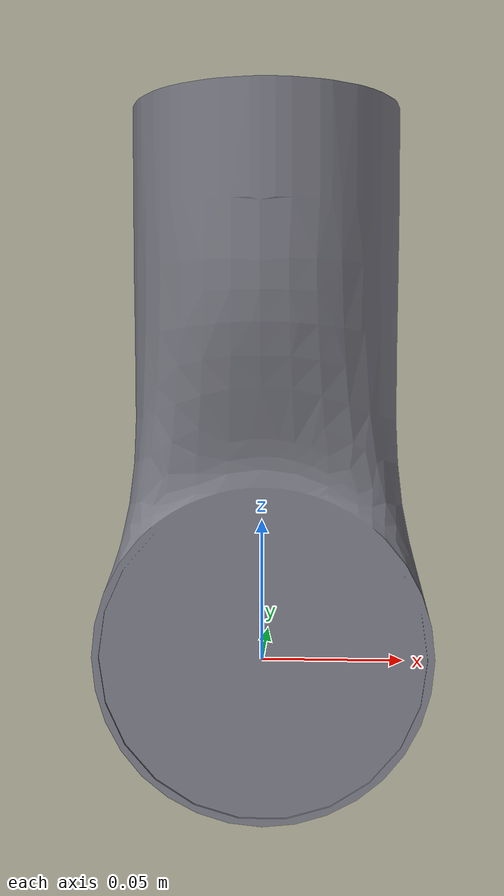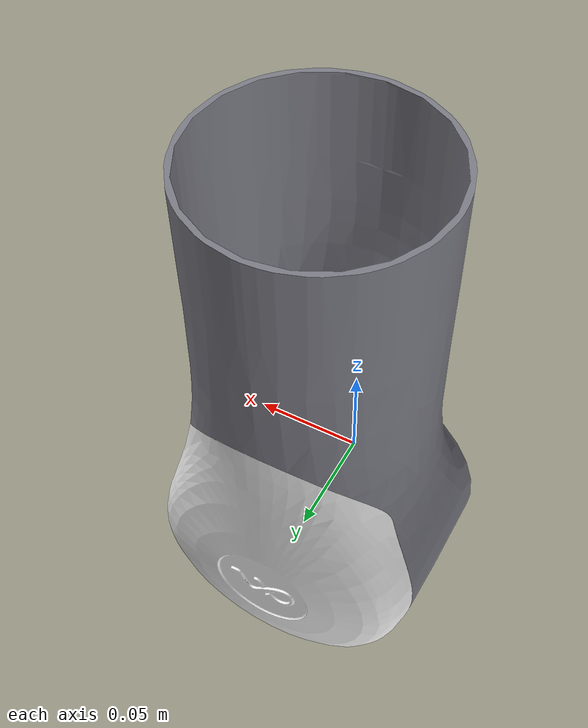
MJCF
<mujoco model="link2">
  <default>
    <default class="visual">
      <geom group="2" type="mesh" contype="0" conaffinity="0"/>
    </default>
    <default class="collision">
      <geom group="3" type="mesh"/>
    </default>
  </default>
  <asset>
    <material name="cover" specular="0.072304" shininess="0.092156872" rgba="0.969921 0.969921 0.969921 1.000000"/>
    <material name="robot" specular="0.600013" shininess="0.015686281" rgba="0.487364 0.487364 0.527718 1.000000"/>
    <mesh file="link2_0.obj"/>
    <mesh file="link2_1.obj"/>
  </asset>
  <worldbody>
    <body name="link2">
      <geom mesh="link2_0" material="robot" class="visual"/>
      <geom mesh="link2_1" material="cover" class="visual"/>
      <geom mesh="link2_0" class="collision"/>
      <geom mesh="link2_1" class="collision"/>
    </body>
  </worldbody>
</mujoco>
